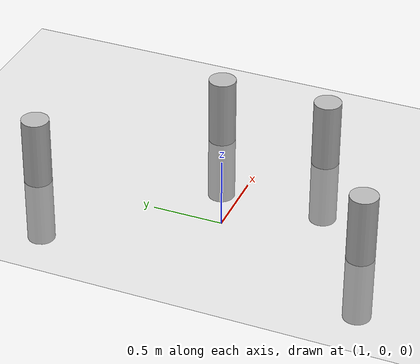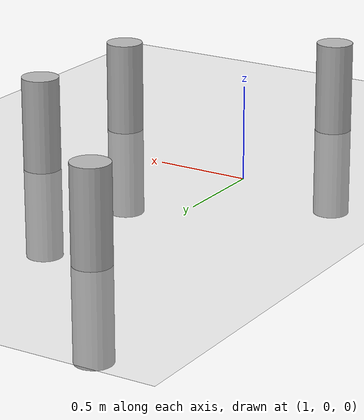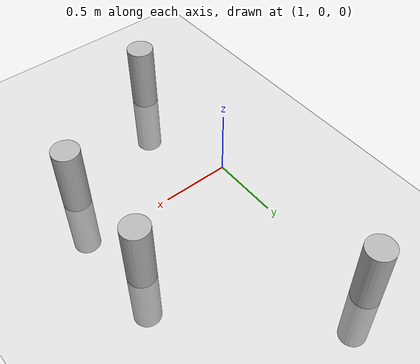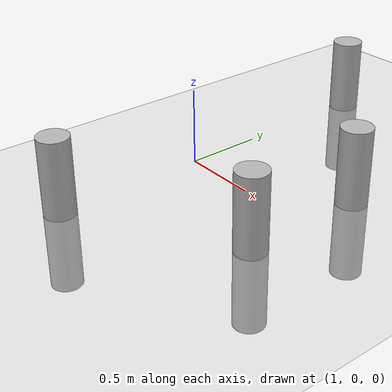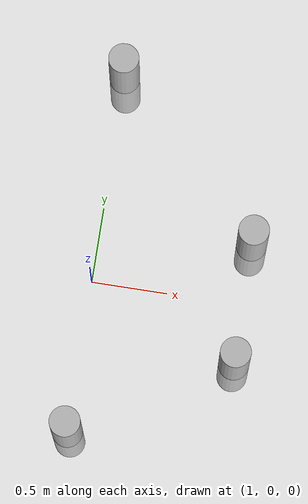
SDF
<?xml version="1.0" ?>
<sdf version="1.5">
  <world name="default">
    <include>
      <uri>model://sun</uri>
    </include>
    <include>
      <uri>model://ground_plane</uri>
    </include>
    <include>
      <name>poll1</name>
      <uri>model://poll</uri>
      <static>true</static>
      <pose>2 0.4 0 0 0 0</pose>
    </include>
    <include>
      <name>poll2</name>
      <uri>model://poll</uri>
      <static>true</static>
      <pose>2 -0.4 0 0 0 0</pose>
    </include>
    <include>
      <name>poll3</name>
      <uri>model://poll</uri>
      <static>true</static>
      <pose>1 -1.0 0 0 0 0</pose>
    </include>
    <include>
      <name>poll4</name>
      <uri>model://poll</uri>
      <static>true</static>
      <pose>1 1.4 0 0 0 0</pose>
    </include>
  </world>
</sdf>

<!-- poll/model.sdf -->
<sdf version="1.4">
<model name="poll">
  <pose>0 0 0 0 0 0</pose>
    <link name="link">
      <inertial>
        <mass>1.0</mass>
        <inertia>
          <ixx>1</ixx>
          <ixy>0.0</ixy>
          <ixz>0.0</ixz>
          <iyy>1</iyy>
          <iyz>0.0</iyz>
          <izz>1</izz>
        </inertia>
      </inertial>
      <collision name="collision">
        <geometry>
          <cylinder>
            <radius>0.1</radius>
            <length>1</length>
          </cylinder>
        </geometry>
      </collision>
      <visual name="visual">
        <geometry>
          <cylinder>
            <radius>0.1</radius>
            <length>1</length>
          </cylinder>
        </geometry>
      </visual>
    </link>
  </model>
</sdf>
